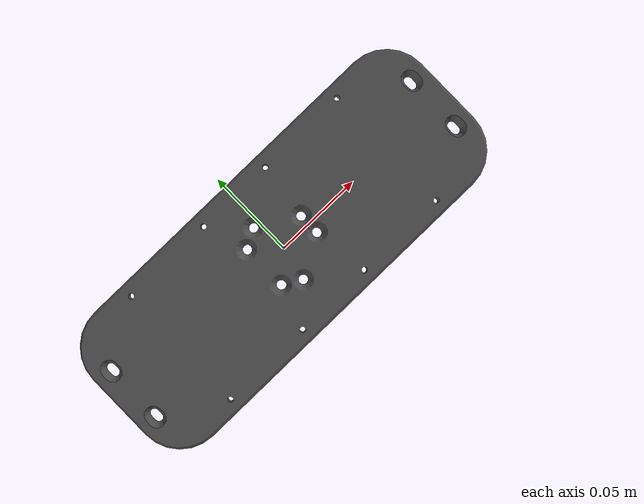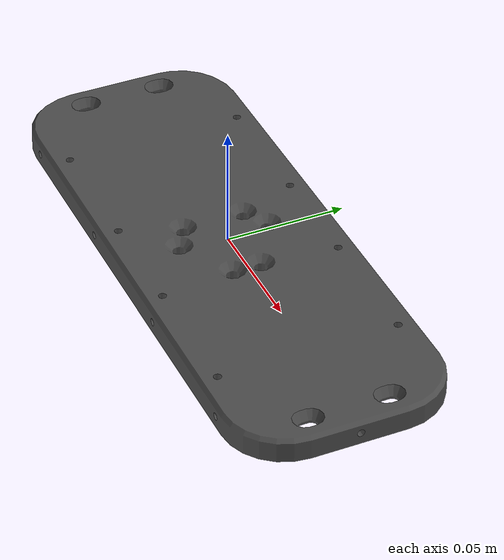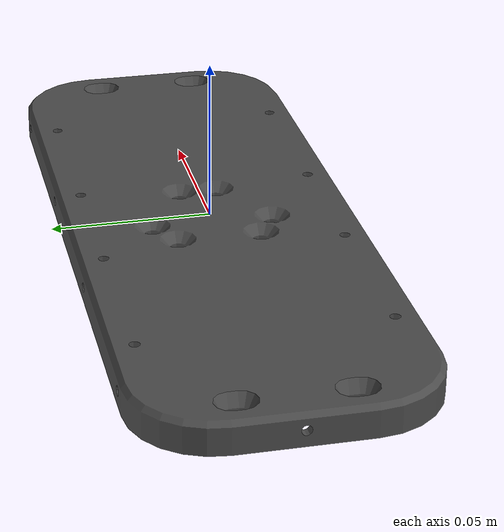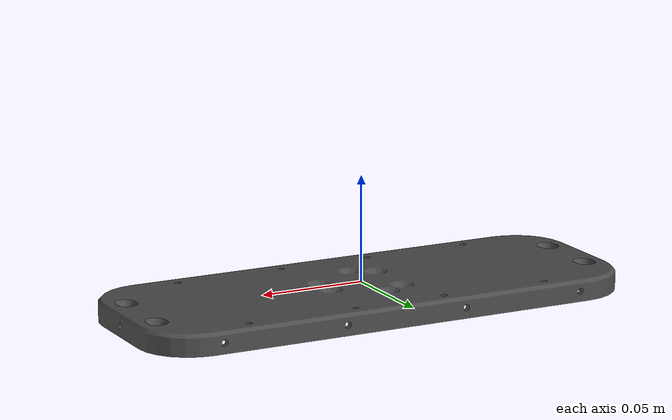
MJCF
<mujoco model="foot-sole">
  <default>
    <default class="visual">
      <geom group="2" type="mesh" contype="0" conaffinity="0"/>
    </default>
    <default class="collision">
      <geom group="3" type="mesh"/>
    </default>
  </default>
  <asset>
    <material name="mtl_foot-sole" specular="0.20000000000000004" shininess="1.0" rgba="0.29803922 0.29803922 0.29803922 1.0"/>
    <mesh file="foot-sole.obj"/>
  </asset>
  <worldbody>
    <body name="foot-sole">
      <geom material="mtl_foot-sole" mesh="foot-sole" class="visual"/>
      <geom mesh="foot-sole" class="collision"/>
    </body>
  </worldbody>
</mujoco>
